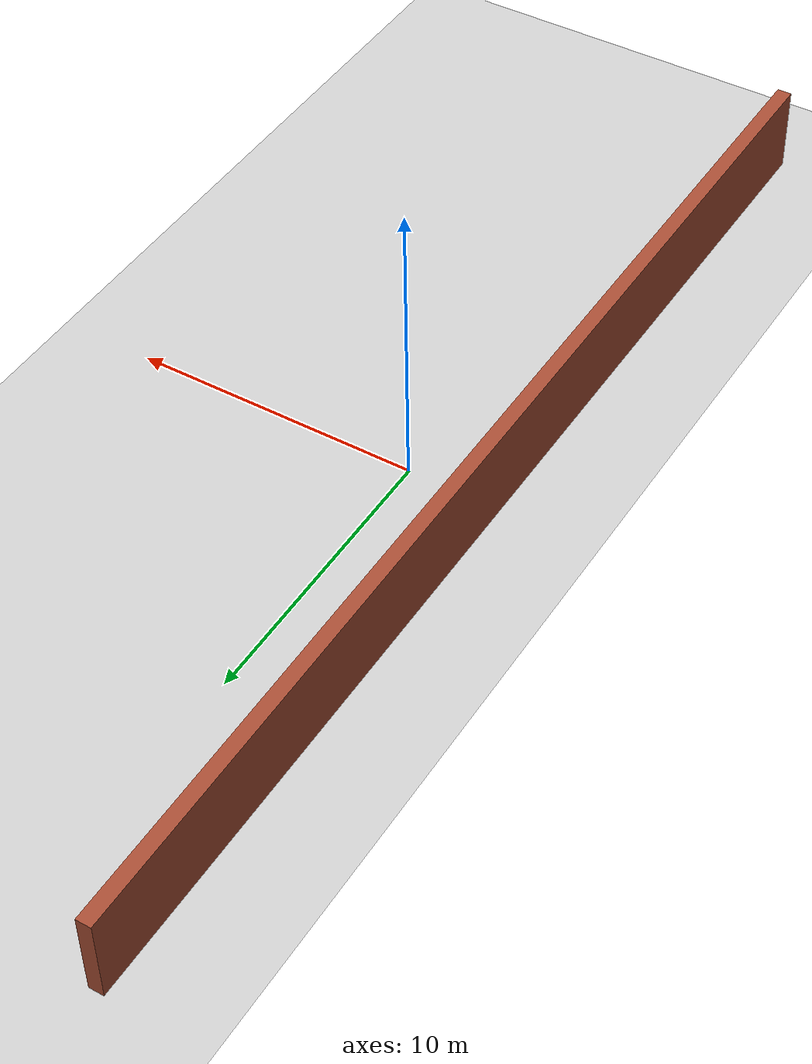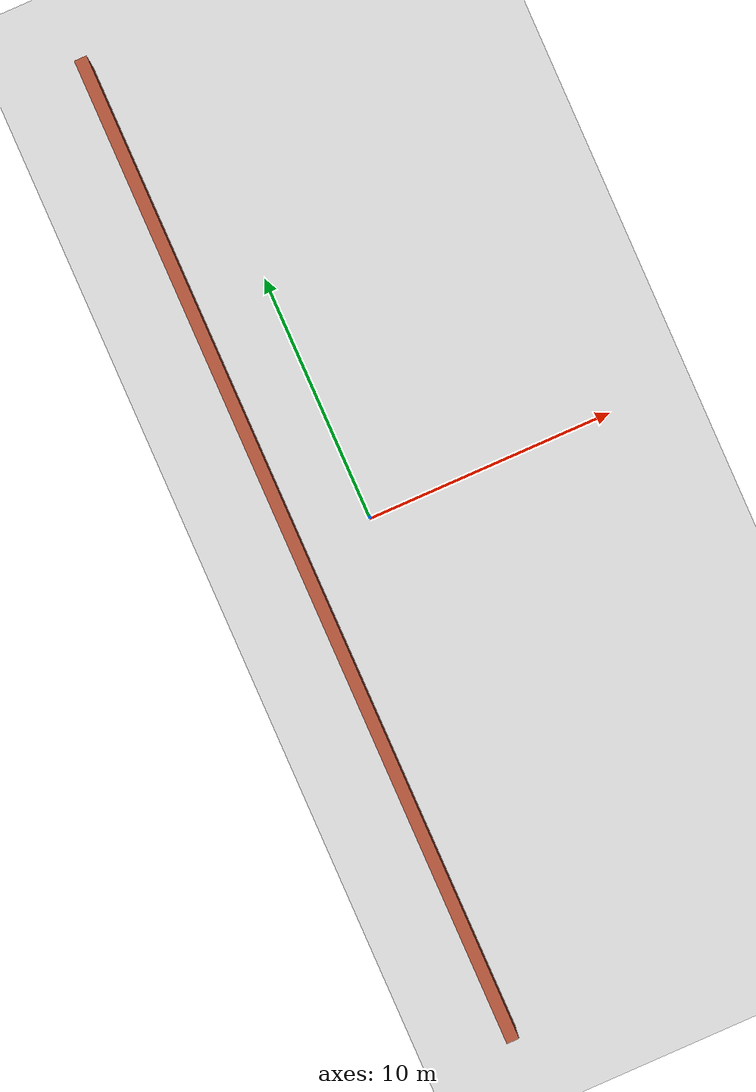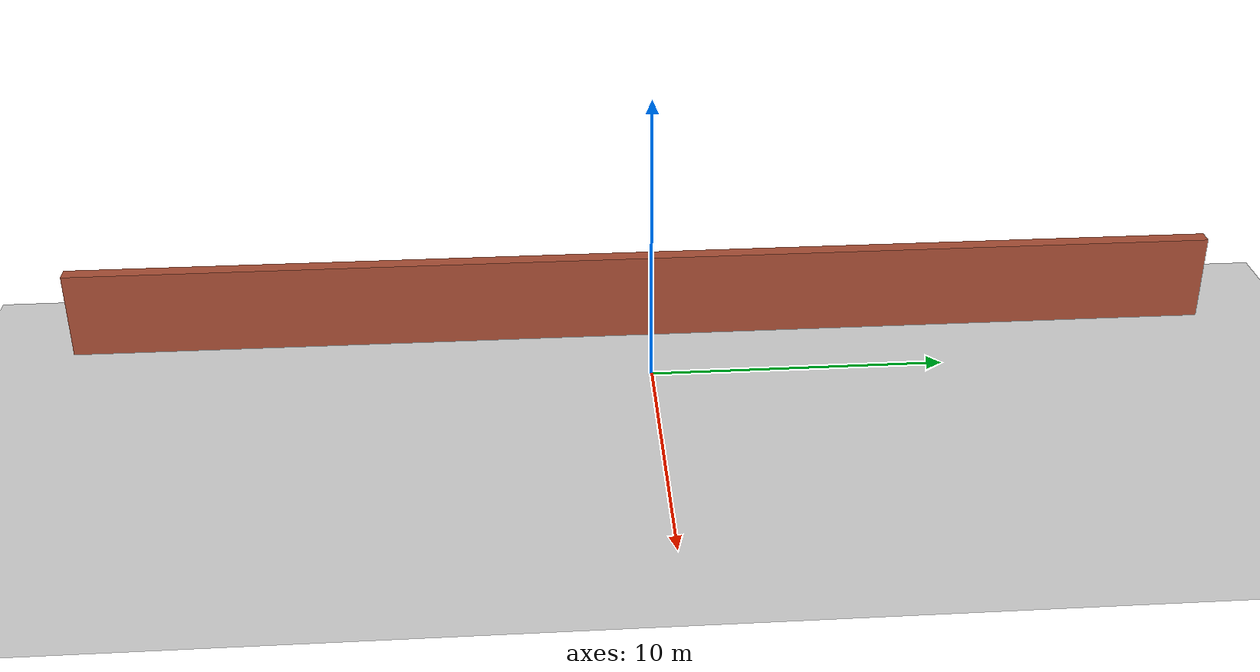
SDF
<?xml version="1.0"?>
<sdf version="1.5">
    <world name="default">
        <!-- Sun and ground plane -->
        <include>
            <uri>
model://sun
</uri>
        </include>
        <include>
            <uri>
model://ground_plane
</uri>
        </include>

        <!-- Initial camera position -->
        <gui fullscreen='0'>
            <camera name='world_camera'>
                <pose>-4 -4 4 0.000000 1 -4</pose>
                <view_controller>orbit</view_controller>
            </camera>
        </gui>

        <!-- Wall -->
        <model name="long_wall">
            <pose>-3 0 0.5 0 0 1.5708</pose>
            <static>true</static>
            <link name="link">
                <inertial>
                    <mass>500.0</mass>
                    <inertia>
                        <ixx>0.51875</ixx>
                        <ixy>0.0</ixy>
                        <ixz>0.0</ixz>
                        <iyy>0.083</iyy>
                        <iyz>0.0</iyz>
                        <izz>0.083</izz>
                    </inertia>
                </inertial>
                <collision name="collision">
                    <geometry>
                        <box>
                            <size>40 0.5 5</size>
                        </box>
                    </geometry>
                </collision>
                <visual name="visual">
                    <geometry>
                        <box>
                            <size>40 0.5 5</size>
                        </box>
                    </geometry>
                    <material>
                        <script>
                            <uri>file://media/material/scripts/gazebo.material</uri>
                            <name>Gazebo/Bricks</name>
                        </script>
                    </material>
                </visual>
            </link>
        </model>

    </world>
</sdf>
